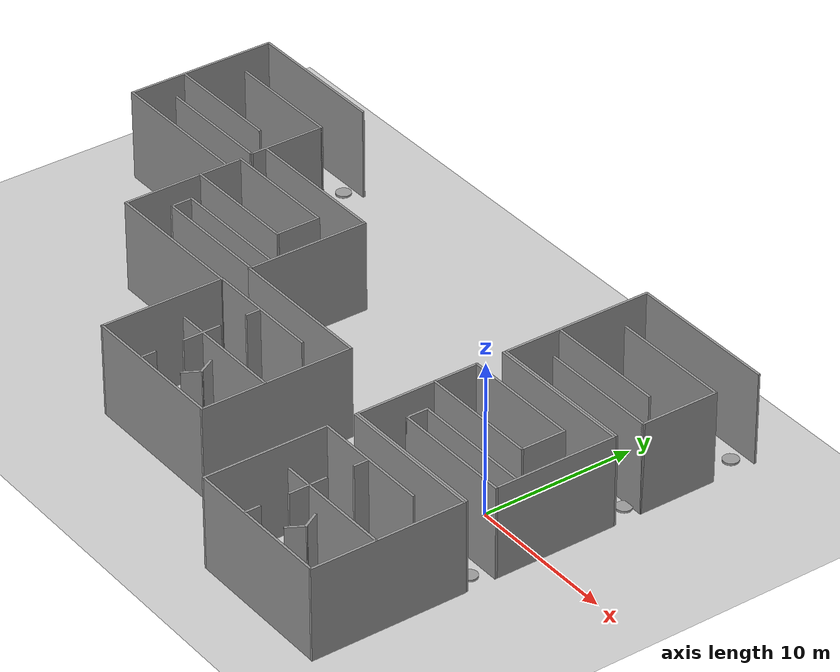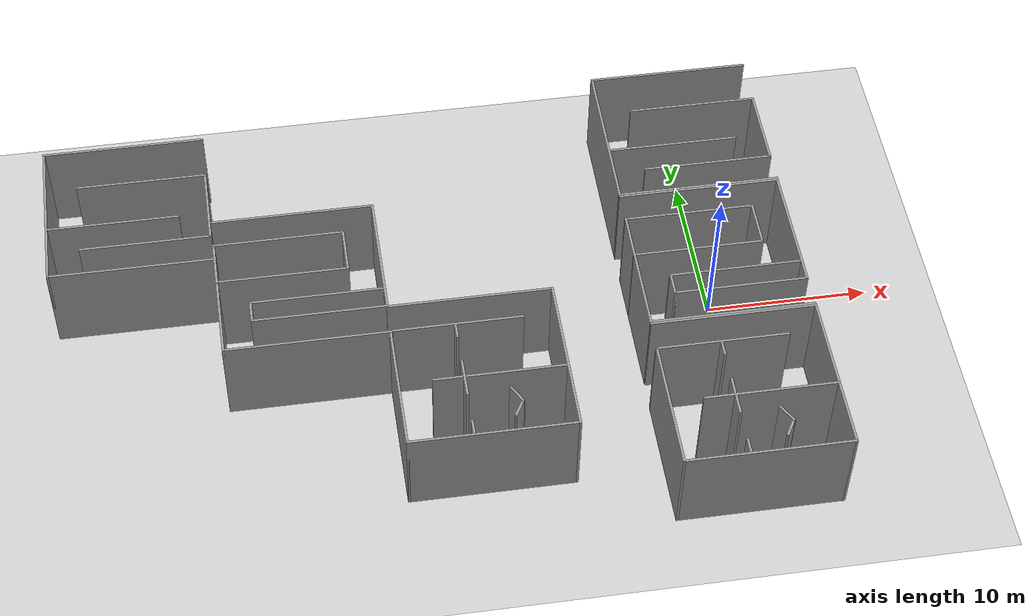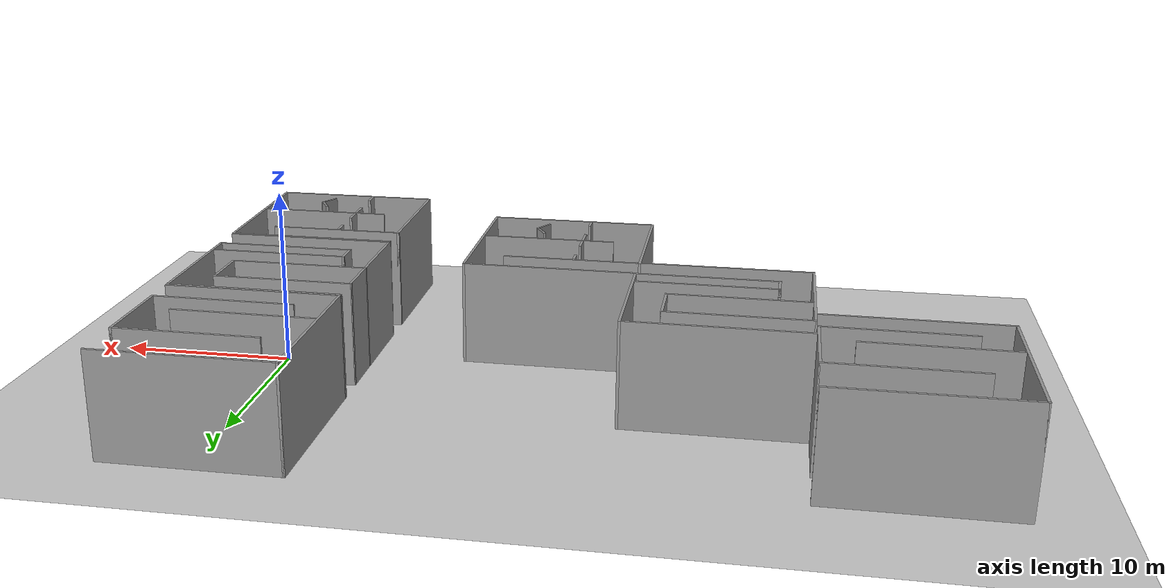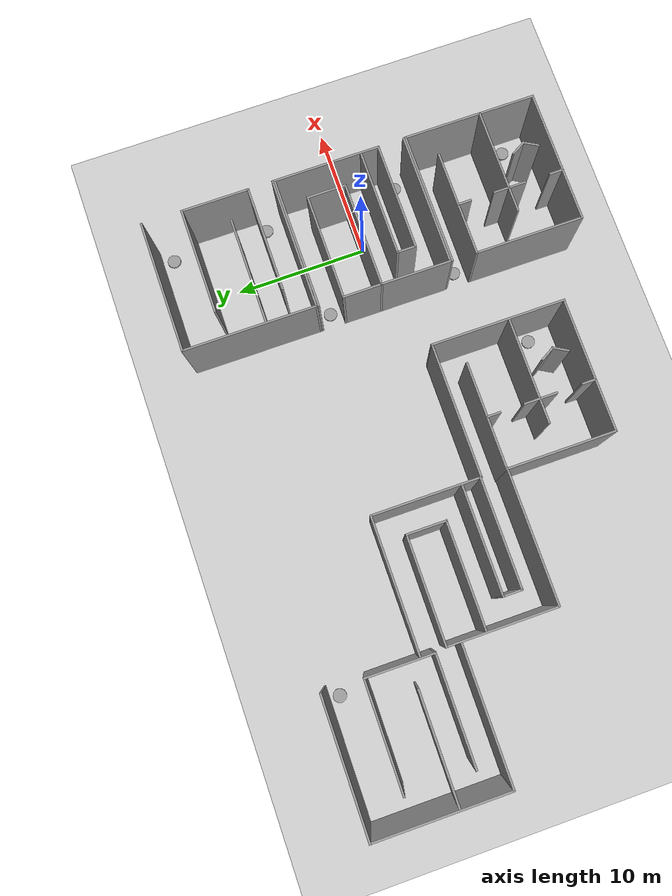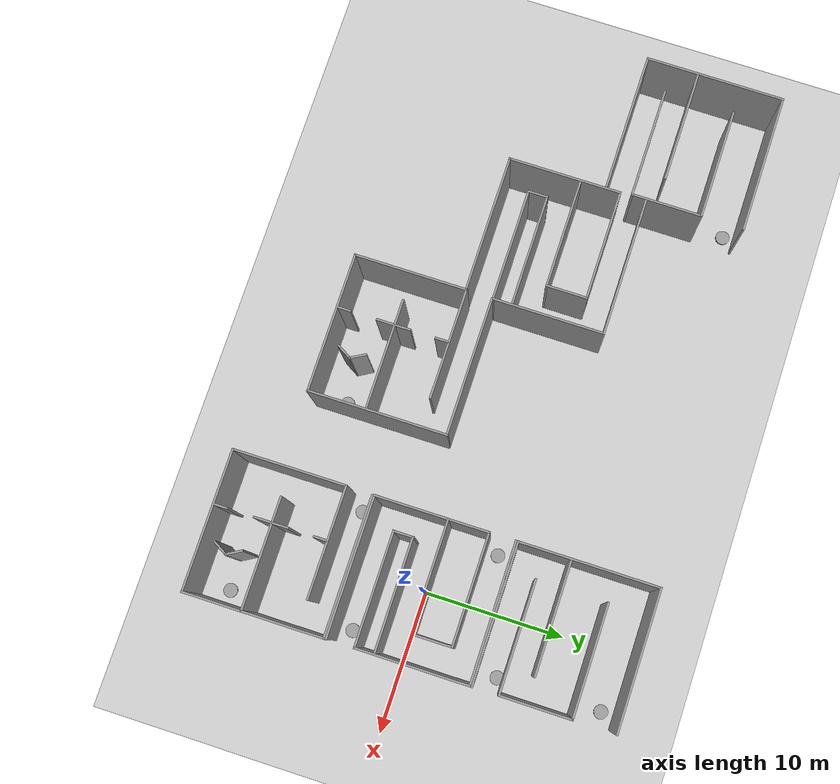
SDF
<sdf version="1.6">
 <world name="default">
  <light name="sun" type="directional">
   <pose>0 0 10 0 -0 0</pose>
   <diffuse>0.8 0.8 0.8 1</diffuse>
   <specular>0.2 0.2 0.2 1</specular>
   <attenuation>
    <range>1000</range>
    <constant>0.9</constant>
    <linear>0.01</linear>
    <quadratic>0.001</quadratic>
   </attenuation>
   <direction>-0.5 0.1 -0.9</direction>
  </light>
  <model name="ground_plane">
   <static>1</static>
   <link name="link">
    <collision name="collision">
     <geometry><plane><normal>0 0 1</normal><size>100 100</size></plane></geometry>
     <surface>
      <contact><collide_bitmask>65535</collide_bitmask></contact>
      <friction><ode><mu>100</mu><mu2>50</mu2></ode></friction>
     </surface>
    </collision>
    <visual name="visual">
     <cast_shadows>0</cast_shadows>
     <geometry><plane><normal>0 0 1</normal><size>100 100</size></plane></geometry>
     <material>
      <script><uri>file://media/materials/scripts/gazebo.material</uri><name>Gazebo/Grey</name></script>
     </material>
    </visual>
   </link>
  </model>
  <gravity>0 0 -9.8</gravity>
  <magnetic_field>6e-06 2.3e-05 -4.2e-05</magnetic_field>
  <atmosphere type="adiabatic"/>
  <physics name="default_physics" default="0" type="ode">
   <max_step_size>0.001</max_step_size>
   <real_time_factor>1</real_time_factor>
   <real_time_update_rate>1000</real_time_update_rate>
  </physics>
  <scene><ambient>0.4 0.4 0.4 1</ambient><background>0.7 0.7 0.7 1</background><shadows>1</shadows></scene>
  <spherical_coordinates>
   <surface_model>EARTH_WGS84</surface_model>
   <latitude_deg>0</latitude_deg>
   <longitude_deg>0</longitude_deg>
   <elevation>0</elevation>
   <heading_deg>0</heading_deg>
  </spherical_coordinates>
  <model name="floor_00">
   <pose>0 10 0 0 -0 3.14</pose>
   <link name="Wall_68">
    <collision name="Wall_68_Collision">
     <geometry><box><size>10 0.15 6</size></box></geometry>
     <pose>0 0 3 0 -0 0</pose>
    </collision>
    <visual name="Wall_68_Visual">
     <pose>0 0 3 0 -0 0</pose>
     <geometry><box><size>10 0.15 6</size></box></geometry>
     <material>
      <script><uri>file://media/materials/scripts/gazebo.material</uri><name>Gazebo/Grey</name></script>
      <ambient>1 1 1 1</ambient>
     </material>
     <meta><layer>0</layer></meta>
    </visual>
    <pose>0 -4.925 0 0 -0 0</pose>
   </link>
   <link name="Wall_69">
    <collision name="Wall_69_Collision">
     <geometry><box><size>10 0.15 6</size></box></geometry>
     <pose>0 0 3 0 -0 0</pose>
    </collision>
    <visual name="Wall_69_Visual">
     <pose>0 0 3 0 -0 0</pose>
     <geometry><box><size>10 0.15 6</size></box></geometry>
     <material>
      <script><uri>file://media/materials/scripts/gazebo.material</uri><name>Gazebo/Grey</name></script>
      <ambient>1 1 1 1</ambient>
     </material>
     <meta><layer>0</layer></meta>
    </visual>
    <pose>4.925 0 0 0 -0 1.5708</pose>
   </link>
   <link name="Wall_72">
    <collision name="Wall_72_Collision">
     <geometry><box><size>10 0.15 6</size></box></geometry>
     <pose>0 0 3 0 -0 0</pose>
    </collision>
    <visual name="Wall_72_Visual">
     <pose>0 0 3 0 -0 0</pose>
     <geometry><box><size>10 0.15 6</size></box></geometry>
     <material>
      <script><uri>file://media/materials/scripts/gazebo.material</uri><name>Gazebo/Grey</name></script>
      <ambient>1 1 1 1</ambient>
     </material>
     <meta><layer>0</layer></meta>
    </visual>
    <pose>0 4.925 0 0 -0 0</pose>
   </link>
   <link name="Wall_75">
    <collision name="Wall_75_Collision">
     <geometry><box><size>8 0.15 6</size></box></geometry>
     <pose>0 0 3 0 -0 0</pose>
    </collision>
    <visual name="Wall_75_Visual">
     <pose>0 0 3 0 -0 0</pose>
     <geometry><box><size>8 0.15 6</size></box></geometry>
     <material>
      <script><uri>file://media/materials/scripts/gazebo.material</uri><name>Gazebo/Grey</name></script>
      <ambient>1 1 1 1</ambient>
     </material>
     <meta><layer>0</layer></meta>
    </visual>
    <pose>-1 3.075 0 0 -0 0</pose>
   </link>
   <link name="Wall_79">
    <collision name="Wall_79_Collision">
     <geometry><box><size>8 0.15 6</size></box></geometry>
     <pose>0 0 3 0 -0 0</pose>
    </collision>
    <visual name="Wall_79_Visual">
     <pose>0 0 3 0 -0 0</pose>
     <geometry><box><size>8 0.15 6</size></box></geometry>
     <material>
      <script><uri>file://media/materials/scripts/gazebo.material</uri><name>Gazebo/Grey</name></script>
      <ambient>1 1 1 1</ambient>
     </material>
     <meta><layer>0</layer></meta>
    </visual>
    <pose>0.85 1.225 0 0 -0 0</pose>
   </link>
   <link name="Wall_82">
    <collision name="Wall_82_Collision">
     <geometry><box><size>8 0.15 6</size></box></geometry>
     <pose>0 0 3 0 -0 0</pose>
    </collision>
    <visual name="Wall_82_Visual">
     <pose>0 0 3 0 -0 0</pose>
     <geometry><box><size>8 0.15 6</size></box></geometry>
     <material>
      <script><uri>file://media/materials/scripts/gazebo.material</uri><name>Gazebo/Grey</name></script>
      <ambient>1 1 1 1</ambient>
     </material>
     <meta><layer>0</layer></meta>
    </visual>
    <pose>-1 -1.914 0 0 -0 0</pose>
   </link>
   <link name="Wall_84">
    <collision name="Wall_84_Collision">
     <geometry><box><size>5.139 0.15 6</size></box></geometry>
     <pose>0 0 3 0 -0 0</pose>
    </collision>
    <visual name="Wall_84_Visual">
     <pose>0 0 3 0 -0 0</pose>
     <geometry><box><size>5.139 0.15 6</size></box></geometry>
     <material>
      <script><uri>file://media/materials/scripts/gazebo.material</uri><name>Gazebo/Grey</name></script>
      <ambient>1 1 1 1</ambient>
     </material>
     <meta><layer>0</layer></meta>
    </visual>
    <pose>-4.925 0.5805 0 0 0 -1.5708</pose>
   </link>
   <static>1</static>
  </model>
  <model name="floor01">
   <link name="Wall_119">
    <collision name="Wall_119_Collision">
     <geometry><box><size>10 0.15 6</size></box></geometry>
     <pose>0 0 3 0 -0 0</pose>
    </collision>
    <visual name="Wall_119_Visual">
     <pose>0 0 3 0 -0 0</pose>
     <geometry><box><size>10 0.15 6</size></box></geometry>
     <material>
      <script><uri>file://media/materials/scripts/gazebo.material</uri><name>Gazebo/Grey</name></script>
      <ambient>1 1 1 1</ambient>
     </material>
     <meta><layer>0</layer></meta>
    </visual>
    <pose>0 -4.925 0 0 -0 0</pose>
   </link>
   <link name="Wall_121">
    <collision name="Wall_121_Collision">
     <geometry><box><size>10 0.15 6</size></box></geometry>
     <pose>0 0 3 0 -0 0</pose>
    </collision>
    <visual name="Wall_121_Visual">
     <pose>0 0 3 0 -0 0</pose>
     <geometry><box><size>10 0.15 6</size></box></geometry>
     <material>
      <script><uri>file://media/materials/scripts/gazebo.material</uri><name>Gazebo/Grey</name></script>
      <ambient>1 1 1 1</ambient>
     </material>
     <meta><layer>0</layer></meta>
    </visual>
    <pose>0 4.925 0 0 -0 3.14159</pose>
   </link>
   <link name="Wall_124">
    <collision name="Wall_124_Collision">
     <geometry><box><size>8 0.15 6</size></box></geometry>
     <pose>0 0 3 0 -0 0</pose>
    </collision>
    <visual name="Wall_124_Visual">
     <pose>0 0 3 0 -0 0</pose>
     <geometry><box><size>8 0.15 6</size></box></geometry>
     <material>
      <script><uri>file://media/materials/scripts/gazebo.material</uri><name>Gazebo/Grey</name></script>
      <ambient>1 1 1 1</ambient>
     </material>
     <meta><layer>0</layer></meta>
    </visual>
    <pose>-1 3.075 0 0 -0 0</pose>
   </link>
   <link name="Wall_125">
    <collision name="Wall_125_Collision">
     <geometry><box><size>3 0.15 6</size></box></geometry>
     <pose>0 0 3 0 -0 0</pose>
    </collision>
    <visual name="Wall_125_Visual">
     <pose>0 0 3 0 -0 0</pose>
     <geometry><box><size>3 0.15 6</size></box></geometry>
     <material>
      <script><uri>file://media/materials/scripts/gazebo.material</uri><name>Gazebo/Grey</name></script>
      <ambient>1 1 1 1</ambient>
     </material>
     <meta><layer>0</layer></meta>
    </visual>
    <pose>2.925 1.65 0 0 0 -1.5708</pose>
   </link>
   <link name="Wall_126">
    <collision name="Wall_126_Collision">
     <geometry><box><size>8 0.15 6</size></box></geometry>
     <pose>0 0 3 0 -0 0</pose>
    </collision>
    <visual name="Wall_126_Visual">
     <pose>0 0 3 0 -0 0</pose>
     <geometry><box><size>8 0.15 6</size></box></geometry>
     <material>
      <script><uri>file://media/materials/scripts/gazebo.material</uri><name>Gazebo/Grey</name></script>
      <ambient>1 1 1 1</ambient>
     </material>
     <meta><layer>0</layer></meta>
    </visual>
    <pose>-1 0.225 0 0 -0 3.14159</pose>
   </link>
   <link name="Wall_129">
    <collision name="Wall_129_Collision">
     <geometry><box><size>8 0.15 6</size></box></geometry>
     <pose>0 0 3 0 -0 0</pose>
    </collision>
    <visual name="Wall_129_Visual">
     <pose>0 0 3 0 -0 0</pose>
     <geometry><box><size>8 0.15 6</size></box></geometry>
     <material>
      <script><uri>file://media/materials/scripts/gazebo.material</uri><name>Gazebo/Grey</name></script>
      <ambient>1 1 1 1</ambient>
     </material>
     <meta><layer>0</layer></meta>
    </visual>
    <pose>0.85 -1.625 0 0 -0 0</pose>
   </link>
   <link name="Wall_132">
    <collision name="Wall_132_Collision">
     <geometry><box><size>1.5 0.15 6</size></box></geometry>
     <pose>0 0 3 0 -0 0</pose>
    </collision>
    <visual name="Wall_132_Visual">
     <pose>0 0 3 0 -0 0</pose>
     <geometry><box><size>1.5 0.15 6</size></box></geometry>
     <material>
      <script><uri>file://media/materials/scripts/gazebo.material</uri><name>Gazebo/Grey</name></script>
      <ambient>1 1 1 1</ambient>
     </material>
     <meta><layer>0</layer></meta>
    </visual>
    <pose>-3.075 -2.3 0 0 0 -1.5708</pose>
   </link>
   <link name="Wall_133">
    <collision name="Wall_133_Collision">
     <geometry><box><size>8.15 0.15 6</size></box></geometry>
     <pose>0 0 3 0 -0 0</pose>
    </collision>
    <visual name="Wall_133_Visual">
     <pose>0 0 3 0 -0 0</pose>
     <geometry><box><size>8.15 0.15 6</size></box></geometry>
     <material>
      <script><uri>file://media/materials/scripts/gazebo.material</uri><name>Gazebo/Grey</name></script>
      <ambient>1 1 1 1</ambient>
     </material>
     <meta><layer>0</layer></meta>
    </visual>
    <pose>0.925 -2.975 0 0 -0 0</pose>
   </link>
   <link name="Wall_135">
    <collision name="Wall_135_Collision">
     <geometry><box><size>8 0.15 6</size></box></geometry>
     <pose>0 0 3 0 -0 0</pose>
    </collision>
    <visual name="Wall_135_Visual">
     <pose>0 0 3 0 -0 0</pose>
     <geometry><box><size>8 0.15 6</size></box></geometry>
     <material>
      <script><uri>file://media/materials/scripts/gazebo.material</uri><name>Gazebo/Grey</name></script>
      <ambient>1 1 1 1</ambient>
     </material>
     <meta><layer>0</layer></meta>
    </visual>
    <pose>4.925 1 0 0 0 -1.5708</pose>
   </link>
   <link name="Wall_138">
    <collision name="Wall_138_Collision">
     <geometry><box><size>8.15 0.15 6</size></box></geometry>
     <pose>0 0 3 0 -0 0</pose>
    </collision>
    <visual name="Wall_138_Visual">
     <pose>0 0 3 0 -0 0</pose>
     <geometry><box><size>8.15 0.15 6</size></box></geometry>
     <material>
      <script><uri>file://media/materials/scripts/gazebo.material</uri><name>Gazebo/Grey</name></script>
      <ambient>1 1 1 1</ambient>
     </material>
     <meta><layer>0</layer></meta>
    </visual>
    <pose>-4.925 -0.924999 0 0 0 -1.5708</pose>
   </link>
   <static>1</static>
  </model>
  <model name="floor02">
   <pose>0 -10 0 0 -0 0</pose>
   <link name="Wall_141">
    <collision name="Wall_141_Collision">
     <geometry><box><size>10 0.15 6</size></box></geometry>
     <pose>0 0 3 0 -0 0</pose>
    </collision>
    <visual name="Wall_141_Visual">
     <pose>0 0 3 0 -0 0</pose>
     <geometry><box><size>10 0.15 6</size></box></geometry>
     <material>
      <script><uri>file://media/materials/scripts/gazebo.material</uri><name>Gazebo/Grey</name></script>
      <ambient>1 1 1 1</ambient>
     </material>
     <meta><layer>0</layer></meta>
    </visual>
    <pose>-0.0295 -4.915 0 0 -0 0</pose>
   </link>
   <link name="Wall_143">
    <collision name="Wall_143_Collision">
     <geometry><box><size>10 0.15 6</size></box></geometry>
     <pose>0 0 3 0 -0 0</pose>
    </collision>
    <visual name="Wall_143_Visual">
     <pose>0 0 3 0 -0 0</pose>
     <geometry><box><size>10 0.15 6</size></box></geometry>
     <material>
      <script><uri>file://media/materials/scripts/gazebo.material</uri><name>Gazebo/Grey</name></script>
      <ambient>1 1 1 1</ambient>
     </material>
     <meta><layer>0</layer></meta>
    </visual>
    <pose>0.0295 4.925 0 0 -0 3.14159</pose>
   </link>
   <link name="Wall_147">
    <collision name="Wall_147_Collision">
     <geometry><box><size>8 0.15 6</size></box></geometry>
     <pose>0 0 3 0 -0 0</pose>
    </collision>
    <visual name="Wall_147_Visual">
     <pose>0 0 3 0 -0 0</pose>
     <geometry><box><size>8 0.15 6</size></box></geometry>
     <material>
      <script><uri>file://media/materials/scripts/gazebo.material</uri><name>Gazebo/Grey</name></script>
      <ambient>1 1 1 1</ambient>
     </material>
     <meta><layer>0</layer></meta>
    </visual>
    <pose>-1.0295 3.085 0 0 -0 0</pose>
   </link>
   <link name="Wall_149">
    <collision name="Wall_149_Collision">
     <geometry><box><size>1 0.15 6</size></box></geometry>
     <pose>0 0 3 0 -0 0</pose>
    </collision>
    <visual name="Wall_149_Visual">
     <pose>0 0 3 0 -0 0</pose>
     <geometry><box><size>1 0.15 6</size></box></geometry>
     <material>
      <script><uri>file://media/materials/scripts/gazebo.material</uri><name>Gazebo/Grey</name></script>
      <ambient>1 1 1 1</ambient>
     </material>
     <meta><layer>0</layer></meta>
    </visual>
    <pose>-1.1165 2.581 0 0 0 -1.5708</pose>
   </link>
   <link name="Wall_151">
    <collision name="Wall_151_Collision">
     <geometry><box><size>2.5 0.15 6</size></box></geometry>
     <pose>0 0 3 0 -0 0</pose>
    </collision>
    <visual name="Wall_151_Visual">
     <pose>0 0 3 0 -0 0</pose>
     <geometry><box><size>2.5 0.15 6</size></box></geometry>
     <material>
      <script><uri>file://media/materials/scripts/gazebo.material</uri><name>Gazebo/Grey</name></script>
      <ambient>1 1 1 1</ambient>
     </material>
     <meta><layer>0</layer></meta>
    </visual>
    <pose>-1.1165 -0.869001 0 0 0 -1.5708</pose>
   </link>
   <link name="Wall_153">
    <collision name="Wall_153_Collision">
     <geometry><box><size>1 0.15 6</size></box></geometry>
     <pose>0 0 3 0 -0 0</pose>
    </collision>
    <visual name="Wall_153_Visual">
     <pose>0 0 3 0 -0 0</pose>
     <geometry><box><size>1 0.15 6</size></box></geometry>
     <material>
      <script><uri>file://media/materials/scripts/gazebo.material</uri><name>Gazebo/Grey</name></script>
      <ambient>1 1 1 1</ambient>
     </material>
     <meta><layer>0</layer></meta>
    </visual>
    <pose>-1.1165 -4.409 0 0 0 -1.5708</pose>
   </link>
   <link name="Wall_156">
    <collision name="Wall_156_Collision">
     <geometry><box><size>8 0.15 6</size></box></geometry>
     <pose>0 0 3 0 -0 0</pose>
    </collision>
    <visual name="Wall_156_Visual">
     <pose>0 0 3 0 -0 0</pose>
     <geometry><box><size>8 0.15 6</size></box></geometry>
     <material>
      <script><uri>file://media/materials/scripts/gazebo.material</uri><name>Gazebo/Grey</name></script>
      <ambient>1 1 1 1</ambient>
     </material>
     <meta><layer>0</layer></meta>
    </visual>
    <pose>1.0085 -0.794001 0 0 -0 3.14159</pose>
   </link>
   <link name="Wall_161">
    <collision name="Wall_161_Collision">
     <geometry><box><size>10 0.15 6</size></box></geometry>
     <pose>0 0 3 0 -0 0</pose>
    </collision>
    <visual name="Wall_161_Visual">
     <pose>0 0 3 0 -0 0</pose>
     <geometry><box><size>10 0.15 6</size></box></geometry>
     <material>
      <script><uri>file://media/materials/scripts/gazebo.material</uri><name>Gazebo/Grey</name></script>
      <ambient>1 1 1 1</ambient>
     </material>
     <meta><layer>0</layer></meta>
    </visual>
    <pose>4.9545 0 0 0 0 -1.5708</pose>
   </link>
   <link name="Wall_165">
    <collision name="Wall_165_Collision">
     <geometry><box><size>8.15 0.15 6</size></box></geometry>
     <pose>0 0 3 0 -0 0</pose>
    </collision>
    <visual name="Wall_165_Visual">
     <pose>0 0 3 0 -0 0</pose>
     <geometry><box><size>8.15 0.15 6</size></box></geometry>
     <material>
      <script><uri>file://media/materials/scripts/gazebo.material</uri><name>Gazebo/Grey</name></script>
      <ambient>1 1 1 1</ambient>
     </material>
     <meta><layer>0</layer></meta>
    </visual>
    <pose>-4.9545 -0.915001 0 0 0 -1.5708</pose>
   </link>
   <static>1</static>
  </model>
  <model name="unit_cylinder">
   <pose>4 14 0.070573 4e-06 4e-06 0.000134</pose>
   <link name="link">
    <inertial>
     <mass>1</mass>
     <inertia><ixx>0.145833</ixx><ixy>0</ixy><ixz>0</ixz><iyy>0.145833</iyy><iyz>0</iyz><izz>0.125</izz></inertia>
    </inertial>
    <collision name="collision">
     <geometry><cylinder><radius>0.5</radius><length>0.141156</length></cylinder></geometry>
    </collision>
    <visual name="visual">
     <geometry><cylinder><radius>0.5</radius><length>0.141156</length></cylinder></geometry>
     <material>
      <script><name>Gazebo/Grey</name><uri>file://media/materials/scripts/gazebo.material</uri></script>
     </material>
    </visual>
   </link>
  </model>
  <model name="unit_cylinder_clone">
   <pose>4 6.5 0.070572 -2e-06 -3e-06 -0.11298</pose>
   <link name="link">
    <inertial>
     <mass>1</mass>
     <inertia><ixx>0.145833</ixx><ixy>0</ixy><ixz>0</ixz><iyy>0.145833</iyy><iyz>0</iyz><izz>0.125</izz></inertia>
    </inertial>
    <collision name="collision">
     <geometry><cylinder><radius>0.5</radius><length>0.141156</length></cylinder></geometry>
    </collision>
    <visual name="visual">
     <geometry><cylinder><radius>0.5</radius><length>0.141156</length></cylinder></geometry>
     <material>
      <script><name>Gazebo/Grey</name><uri>file://media/materials/scripts/gazebo.material</uri></script>
     </material>
    </visual>
   </link>
  </model>
  <model name="unit_cylinder_clone_0">
   <pose>-4 4 0.070573 -4e-06 -4e-06 -0</pose>
   <link name="link">
    <inertial>
     <mass>1</mass>
     <inertia><ixx>0.145833</ixx><ixy>0</ixy><ixz>0</ixz><iyy>0.145833</iyy><iyz>0</iyz><izz>0.125</izz></inertia>
    </inertial>
    <collision name="collision">
     <geometry><cylinder><radius>0.5</radius><length>0.141156</length></cylinder></geometry>
    </collision>
    <visual name="visual">
     <geometry><cylinder><radius>0.5</radius><length>0.141156</length></cylinder></geometry>
     <material>
      <script><name>Gazebo/Grey</name><uri>file://media/materials/scripts/gazebo.material</uri></script>
     </material>
    </visual>
   </link>
  </model>
  <model name="unit_cylinder_clone_1">
   <pose>4 -4 0.070573 -4e-06 -4e-06 -0</pose>
   <link name="link">
    <inertial>
     <mass>1</mass>
     <inertia><ixx>0.145833</ixx><ixy>0</ixy><ixz>0</ixz><iyy>0.145833</iyy><iyz>0</iyz><izz>0.125</izz></inertia>
    </inertial>
    <collision name="collision">
     <geometry><cylinder><radius>0.5</radius><length>0.141156</length></cylinder></geometry>
    </collision>
    <visual name="visual">
     <geometry><cylinder><radius>0.5</radius><length>0.141156</length></cylinder></geometry>
     <material>
      <script><name>Gazebo/Grey</name><uri>file://media/materials/scripts/gazebo.material</uri></script>
     </material>
    </visual>
   </link>
  </model>
  <model name="unit_cylinder_clone_2">
   <pose>-4 -6 0.070573 -4e-06 -4e-06 -0</pose>
   <link name="link">
    <inertial>
     <mass>1</mass>
     <inertia><ixx>0.145833</ixx><ixy>0</ixy><ixz>0</ixz><iyy>0.145833</iyy><iyz>0</iyz><izz>0.125</izz></inertia>
    </inertial>
    <collision name="collision">
     <geometry><cylinder><radius>0.5</radius><length>0.141156</length></cylinder></geometry>
    </collision>
    <visual name="visual">
     <geometry><cylinder><radius>0.5</radius><length>0.141156</length></cylinder></geometry>
     <material>
      <script><name>Gazebo/Grey</name><uri>file://media/materials/scripts/gazebo.material</uri></script>
     </material>
    </visual>
   </link>
  </model>
  <model name="unit_cylinder_clone_3">
   <pose>4 -13 0.070573 -4e-06 -4e-06 -0</pose>
   <link name="link">
    <inertial>
     <mass>1</mass>
     <inertia><ixx>0.145833</ixx><ixy>0</ixy><ixz>0</ixz><iyy>0.145833</iyy><iyz>0</iyz><izz>0.125</izz></inertia>
    </inertial>
    <collision name="collision">
     <geometry><cylinder><radius>0.5</radius><length>0.141156</length></cylinder></geometry>
    </collision>
    <visual name="visual">
     <geometry><cylinder><radius>0.5</radius><length>0.141156</length></cylinder></geometry>
     <material>
      <script><name>Gazebo/Grey</name><uri>file://media/materials/scripts/gazebo.material</uri></script>
     </material>
    </visual>
   </link>
  </model>
  <model name="floor01_clone">
   <pose>-25.0322 1.41171 0 0 -0 0</pose>
   <link name="Wall_119">
    <collision name="Wall_119_Collision">
     <geometry><box><size>10 0.15 6</size></box></geometry>
     <pose>0 0 3 0 -0 0</pose>
    </collision>
    <visual name="Wall_119_Visual">
     <pose>0 0 3 0 -0 0</pose>
     <geometry><box><size>10 0.15 6</size></box></geometry>
     <material>
      <script><uri>file://media/materials/scripts/gazebo.material</uri><name>Gazebo/Grey</name></script>
      <ambient>1 1 1 1</ambient>
     </material>
     <meta><layer>0</layer></meta>
    </visual>
    <pose>0 -4.925 0 0 -0 0</pose>
   </link>
   <link name="Wall_121">
    <collision name="Wall_121_Collision">
     <geometry><box><size>10 0.15 6</size></box></geometry>
     <pose>0 0 3 0 -0 0</pose>
    </collision>
    <visual name="Wall_121_Visual">
     <pose>0 0 3 0 -0 0</pose>
     <geometry><box><size>10 0.15 6</size></box></geometry>
     <material>
      <script><uri>file://media/materials/scripts/gazebo.material</uri><name>Gazebo/Grey</name></script>
      <ambient>1 1 1 1</ambient>
     </material>
     <meta><layer>0</layer></meta>
    </visual>
    <pose>0 4.925 0 0 -0 3.14159</pose>
   </link>
   <link name="Wall_124">
    <collision name="Wall_124_Collision">
     <geometry><box><size>8 0.15 6</size></box></geometry>
     <pose>0 0 3 0 -0 0</pose>
    </collision>
    <visual name="Wall_124_Visual">
     <pose>0 0 3 0 -0 0</pose>
     <geometry><box><size>8 0.15 6</size></box></geometry>
     <material>
      <script><uri>file://media/materials/scripts/gazebo.material</uri><name>Gazebo/Grey</name></script>
      <ambient>1 1 1 1</ambient>
     </material>
     <meta><layer>0</layer></meta>
    </visual>
    <pose>-1 3.075 0 0 -0 0</pose>
   </link>
   <link name="Wall_125">
    <collision name="Wall_125_Collision">
     <geometry><box><size>3 0.15 6</size></box></geometry>
     <pose>0 0 3 0 -0 0</pose>
    </collision>
    <visual name="Wall_125_Visual">
     <pose>0 0 3 0 -0 0</pose>
     <geometry><box><size>3 0.15 6</size></box></geometry>
     <material>
      <script><uri>file://media/materials/scripts/gazebo.material</uri><name>Gazebo/Grey</name></script>
      <ambient>1 1 1 1</ambient>
     </material>
     <meta><layer>0</layer></meta>
    </visual>
    <pose>2.925 1.65 0 0 0 -1.5708</pose>
   </link>
   <link name="Wall_126">
    <collision name="Wall_126_Collision">
     <geometry><box><size>8 0.15 6</size></box></geometry>
     <pose>0 0 3 0 -0 0</pose>
    </collision>
    <visual name="Wall_126_Visual">
     <pose>0 0 3 0 -0 0</pose>
     <geometry><box><size>8 0.15 6</size></box></geometry>
     <material>
      <script><uri>file://media/materials/scripts/gazebo.material</uri><name>Gazebo/Grey</name></script>
      <ambient>1 1 1 1</ambient>
     </material>
     <meta><layer>0</layer></meta>
    </visual>
    <pose>-1 0.225 0 0 -0 3.14159</pose>
   </link>
   <link name="Wall_129">
    <collision name="Wall_129_Collision">
     <geometry><box><size>8 0.15 6</size></box></geometry>
     <pose>0 0 3 0 -0 0</pose>
    </collision>
    <visual name="Wall_129_Visual">
     <pose>0 0 3 0 -0 0</pose>
     <geometry><box><size>8 0.15 6</size></box></geometry>
     <material>
      <script><uri>file://media/materials/scripts/gazebo.material</uri><name>Gazebo/Grey</name></script>
      <ambient>1 1 1 1</ambient>
     </material>
     <meta><layer>0</layer></meta>
    </visual>
    <pose>0.85 -1.625 0 0 -0 0</pose>
   </link>
   <link name="Wall_132">
    <collision name="Wall_132_Collision">
     <geometry><box><size>1.5 0.15 6</size></box></geometry>
     <pose>0 0 3 0 -0 0</pose>
    </collision>
    <visual name="Wall_132_Visual">
     <pose>0 0 3 0 -0 0</pose>
     <geometry><box><size>1.5 0.15 6</size></box></geometry>
     <material>
      <script><uri>file://media/materials/scripts/gazebo.material</uri><name>Gazebo/Grey</name></script>
      <ambient>1 1 1 1</ambient>
     </material>
     <meta><layer>0</layer></meta>
    </visual>
    <pose>-3.075 -2.3 0 0 0 -1.5708</pose>
   </link>
   <link name="Wall_133">
    <collision name="Wall_133_Collision">
     <geometry><box><size>8.15 0.15 6</size></box></geometry>
     <pose>0 0 3 0 -0 0</pose>
    </collision>
    <visual name="Wall_133_Visual">
     <pose>0 0 3 0 -0 0</pose>
     <geometry><box><size>8.15 0.15 6</size></box></geometry>
     <material>
      <script><uri>file://media/materials/scripts/gazebo.material</uri><name>Gazebo/Grey</name></script>
      <ambient>1 1 1 1</ambient>
     </material>
     <meta><layer>0</layer></meta>
    </visual>
    <pose>0.925 -2.975 0 0 -0 0</pose>
   </link>
   <link name="Wall_135">
    <collision name="Wall_135_Collision">
     <geometry><box><size>8 0.15 6</size></box></geometry>
     <pose>0 0 3 0 -0 0</pose>
    </collision>
    <visual name="Wall_135_Visual">
     <pose>0 0 3 0 -0 0</pose>
     <geometry><box><size>8 0.15 6</size></box></geometry>
     <material>
      <script><uri>file://media/materials/scripts/gazebo.material</uri><name>Gazebo/Grey</name></script>
      <ambient>1 1 1 1</ambient>
     </material>
     <meta><layer>0</layer></meta>
    </visual>
    <pose>4.925 1 0 0 0 -1.5708</pose>
   </link>
   <link name="Wall_138">
    <collision name="Wall_138_Collision">
     <geometry><box><size>8.15 0.15 6</size></box></geometry>
     <pose>0 0 3 0 -0 0</pose>
    </collision>
    <visual name="Wall_138_Visual">
     <pose>0 0 3 0 -0 0</pose>
     <geometry><box><size>8.15 0.15 6</size></box></geometry>
     <material>
      <script><uri>file://media/materials/scripts/gazebo.material</uri><name>Gazebo/Grey</name></script>
      <ambient>1 1 1 1</ambient>
     </material>
     <meta><layer>0</layer></meta>
    </visual>
    <pose>-4.925 -0.924999 0 0 0 -1.5708</pose>
   </link>
   <static>1</static>
  </model>
  <model name="floor02_clone">
   <pose>-15.201 -6.55443 0 0 -0 0</pose>
   <link name="Wall_141">
    <collision name="Wall_141_Collision">
     <geometry><box><size>10 0.15 6</size></box></geometry>
     <pose>0 0 3 0 -0 0</pose>
    </collision>
    <visual name="Wall_141_Visual">
     <pose>0 0 3 0 -0 0</pose>
     <geometry><box><size>10 0.15 6</size></box></geometry>
     <material>
      <script><uri>file://media/materials/scripts/gazebo.material</uri><name>Gazebo/Grey</name></script>
      <ambient>1 1 1 1</ambient>
     </material>
     <meta><layer>0</layer></meta>
    </visual>
    <pose>-0.0295 -4.915 0 0 -0 0</pose>
   </link>
   <link name="Wall_143">
    <collision name="Wall_143_Collision">
     <geometry><box><size>10 0.15 6</size></box></geometry>
     <pose>0 0 3 0 -0 0</pose>
    </collision>
    <visual name="Wall_143_Visual">
     <pose>0 0 3 0 -0 0</pose>
     <geometry><box><size>10 0.15 6</size></box></geometry>
     <material>
      <script><uri>file://media/materials/scripts/gazebo.material</uri><name>Gazebo/Grey</name></script>
      <ambient>1 1 1 1</ambient>
     </material>
     <meta><layer>0</layer></meta>
    </visual>
    <pose>0.0295 4.925 0 0 -0 3.14159</pose>
   </link>
   <link name="Wall_147">
    <collision name="Wall_147_Collision">
     <geometry><box><size>8 0.15 6</size></box></geometry>
     <pose>0 0 3 0 -0 0</pose>
    </collision>
    <visual name="Wall_147_Visual">
     <pose>0 0 3 0 -0 0</pose>
     <geometry><box><size>8 0.15 6</size></box></geometry>
     <material>
      <script><uri>file://media/materials/scripts/gazebo.material</uri><name>Gazebo/Grey</name></script>
      <ambient>1 1 1 1</ambient>
     </material>
     <meta><layer>0</layer></meta>
    </visual>
    <pose>-1.0295 3.085 0 0 -0 0</pose>
   </link>
   <link name="Wall_149">
    <collision name="Wall_149_Collision">
     <geometry><box><size>1 0.15 6</size></box></geometry>
     <pose>0 0 3 0 -0 0</pose>
    </collision>
    <visual name="Wall_149_Visual">
     <pose>0 0 3 0 -0 0</pose>
     <geometry><box><size>1 0.15 6</size></box></geometry>
     <material>
      <script><uri>file://media/materials/scripts/gazebo.material</uri><name>Gazebo/Grey</name></script>
      <ambient>1 1 1 1</ambient>
     </material>
     <meta><layer>0</layer></meta>
    </visual>
    <pose>-1.1165 2.581 0 0 0 -1.5708</pose>
   </link>
   <link name="Wall_151">
    <collision name="Wall_151_Collision">
     <geometry><box><size>2.5 0.15 6</size></box></geometry>
     <pose>0 0 3 0 -0 0</pose>
    </collision>
    <visual name="Wall_151_Visual">
     <pose>0 0 3 0 -0 0</pose>
     <geometry><box><size>2.5 0.15 6</size></box></geometry>
     <material>
      <script><uri>file://media/materials/scripts/gazebo.material</uri><name>Gazebo/Grey</name></script>
      <ambient>1 1 1 1</ambient>
     </material>
     <meta><layer>0</layer></meta>
    </visual>
    <pose>-1.1165 -0.869001 0 0 0 -1.5708</pose>
   </link>
   <link name="Wall_153">
    <collision name="Wall_153_Collision">
     <geometry><box><size>1 0.15 6</size></box></geometry>
     <pose>0 0 3 0 -0 0</pose>
    </collision>
    <visual name="Wall_153_Visual">
     <pose>0 0 3 0 -0 0</pose>
     <geometry><box><size>1 0.15 6</size></box></geometry>
     <material>
      <script><uri>file://media/materials/scripts/gazebo.material</uri><name>Gazebo/Grey</name></script>
      <ambient>1 1 1 1</ambient>
     </material>
     <meta><layer>0</layer></meta>
    </visual>
    <pose>-1.1165 -4.409 0 0 0 -1.5708</pose>
   </link>
   <link name="Wall_156">
    <collision name="Wall_156_Collision">
     <geometry><box><size>8 0.15 6</size></box></geometry>
     <pose>0 0 3 0 -0 0</pose>
    </collision>
    <visual name="Wall_156_Visual">
     <pose>0 0 3 0 -0 0</pose>
     <geometry><box><size>8 0.15 6</size></box></geometry>
     <material>
      <script><uri>file://media/materials/scripts/gazebo.material</uri><name>Gazebo/Grey</name></script>
      <ambient>1 1 1 1</ambient>
     </material>
     <meta><layer>0</layer></meta>
    </visual>
    <pose>1.0085 -0.794001 0 0 -0 3.14159</pose>
   </link>
   <link name="Wall_161">
    <collision name="Wall_161_Collision">
     <geometry><box><size>10 0.15 6</size></box></geometry>
     <pose>0 0 3 0 -0 0</pose>
    </collision>
    <visual name="Wall_161_Visual">
     <pose>0 0 3 0 -0 0</pose>
     <geometry><box><size>10 0.15 6</size></box></geometry>
     <material>
      <script><uri>file://media/materials/scripts/gazebo.material</uri><name>Gazebo/Grey</name></script>
      <ambient>1 1 1 1</ambient>
     </material>
     <meta><layer>0</layer></meta>
    </visual>
    <pose>4.9545 0 0 0 0 -1.5708</pose>
   </link>
   <link name="Wall_165">
    <collision name="Wall_165_Collision">
     <geometry><box><size>8.15 0.15 6</size></box></geometry>
     <pose>0 0 3 0 -0 0</pose>
    </collision>
    <visual name="Wall_165_Visual">
     <pose>0 0 3 0 -0 0</pose>
     <geometry><box><size>8.15 0.15 6</size></box></geometry>
     <material>
      <script><uri>file://media/materials/scripts/gazebo.material</uri><name>Gazebo/Grey</name></script>
      <ambient>1 1 1 1</ambient>
     </material>
     <meta><layer>0</layer></meta>
    </visual>
    <pose>-4.9545 -0.915001 0 0 0 -1.5708</pose>
   </link>
   <static>1</static>
  </model>
  <model name="unit_cylinder_clone_5">
   <pose>-11 -9.5 0.070572 8e-06 -8e-06 1e-06</pose>
   <link name="link">
    <inertial>
     <mass>1</mass>
     <inertia><ixx>0.145833</ixx><ixy>0</ixy><ixz>0</ixz><iyy>0.145833</iyy><iyz>0</iyz><izz>0.125</izz></inertia>
    </inertial>
    <collision name="collision">
     <geometry><cylinder><radius>0.5</radius><length>0.141156</length></cylinder></geometry>
    </collision>
    <visual name="visual">
     <geometry><cylinder><radius>0.5</radius><length>0.141156</length></cylinder></geometry>
     <material>
      <script><name>Gazebo/Grey</name><uri>file://media/materials/scripts/gazebo.material</uri></script>
     </material>
    </visual>
   </link>
  </model>
  <model name="floor_00_clone_0">
   <pose>-35.0056 8.38021 0 0 -0 3.14</pose>
   <link name="Wall_68">
    <collision name="Wall_68_Collision">
     <geometry><box><size>10 0.15 6</size></box></geometry>
     <pose>0 0 3 0 -0 0</pose>
    </collision>
    <visual name="Wall_68_Visual">
     <pose>0 0 3 0 -0 0</pose>
     <geometry><box><size>10 0.15 6</size></box></geometry>
     <material>
      <script><uri>file://media/materials/scripts/gazebo.material</uri><name>Gazebo/Grey</name></script>
      <ambient>1 1 1 1</ambient>
     </material>
     <meta><layer>0</layer></meta>
    </visual>
    <pose>0 -4.925 0 0 -0 0</pose>
   </link>
   <link name="Wall_69">
    <collision name="Wall_69_Collision">
     <geometry><box><size>10 0.15 6</size></box></geometry>
     <pose>0 0 3 0 -0 0</pose>
    </collision>
    <visual name="Wall_69_Visual">
     <pose>0 0 3 0 -0 0</pose>
     <geometry><box><size>10 0.15 6</size></box></geometry>
     <material>
      <script><uri>file://media/materials/scripts/gazebo.material</uri><name>Gazebo/Grey</name></script>
      <ambient>1 1 1 1</ambient>
     </material>
     <meta><layer>0</layer></meta>
    </visual>
    <pose>4.925 0 0 0 -0 1.5708</pose>
   </link>
   <link name="Wall_72">
    <collision name="Wall_72_Collision">
     <geometry><box><size>10 0.15 6</size></box></geometry>
     <pose>0 0 3 0 -0 0</pose>
    </collision>
    <visual name="Wall_72_Visual">
     <pose>0 0 3 0 -0 0</pose>
     <geometry><box><size>10 0.15 6</size></box></geometry>
     <material>
      <script><uri>file://media/materials/scripts/gazebo.material</uri><name>Gazebo/Grey</name></script>
      <ambient>1 1 1 1</ambient>
     </material>
     <meta><layer>0</layer></meta>
    </visual>
    <pose>0 4.925 0 0 -0 0</pose>
   </link>
   <link name="Wall_75">
    <collision name="Wall_75_Collision">
     <geometry><box><size>8 0.15 6</size></box></geometry>
     <pose>0 0 3 0 -0 0</pose>
    </collision>
    <visual name="Wall_75_Visual">
     <pose>0 0 3 0 -0 0</pose>
     <geometry><box><size>8 0.15 6</size></box></geometry>
     <material>
      <script><uri>file://media/materials/scripts/gazebo.material</uri><name>Gazebo/Grey</name></script>
      <ambient>1 1 1 1</ambient>
     </material>
     <meta><layer>0</layer></meta>
    </visual>
    <pose>-1 3.075 0 0 -0 0</pose>
   </link>
   <link name="Wall_79">
    <collision name="Wall_79_Collision">
     <geometry><box><size>8 0.15 6</size></box></geometry>
     <pose>0 0 3 0 -0 0</pose>
    </collision>
    <visual name="Wall_79_Visual">
     <pose>0 0 3 0 -0 0</pose>
     <geometry><box><size>8 0.15 6</size></box></geometry>
     <material>
      <script><uri>file://media/materials/scripts/gazebo.material</uri><name>Gazebo/Grey</name></script>
      <ambient>1 1 1 1</ambient>
     </material>
     <meta><layer>0</layer></meta>
    </visual>
    <pose>0.85 1.225 0 0 -0 0</pose>
   </link>
   <link name="Wall_82">
    <collision name="Wall_82_Collision">
     <geometry><box><size>8 0.15 6</size></box></geometry>
     <pose>0 0 3 0 -0 0</pose>
    </collision>
    <visual name="Wall_82_Visual">
     <pose>0 0 3 0 -0 0</pose>
     <geometry><box><size>8 0.15 6</size></box></geometry>
     <material>
      <script><uri>file://media/materials/scripts/gazebo.material</uri><name>Gazebo/Grey</name></script>
      <ambient>1 1 1 1</ambient>
     </material>
     <meta><layer>0</layer></meta>
    </visual>
    <pose>-1 -1.914 0 0 -0 0</pose>
   </link>
   <link name="Wall_84">
    <collision name="Wall_84_Collision">
     <geometry><box><size>5.139 0.15 6</size></box></geometry>
     <pose>0 0 3 0 -0 0</pose>
    </collision>
    <visual name="Wall_84_Visual">
     <pose>0 0 3 0 -0 0</pose>
     <geometry><box><size>5.139 0.15 6</size></box></geometry>
     <material>
      <script><uri>file://media/materials/scripts/gazebo.material</uri><name>Gazebo/Grey</name></script>
      <ambient>1 1 1 1</ambient>
     </material>
     <meta><layer>0</layer></meta>
    </visual>
    <pose>-4.925 0.5805 0 0 0 -1.5708</pose>
   </link>
   <static>1</static>
  </model>
  <model name="unit_cylinder_clone_4">
   <pose>-31 12.5 0.070573 -4e-06 -4e-06 0.000134</pose>
   <link name="link">
    <inertial>
     <mass>1</mass>
     <inertia><ixx>0.145833</ixx><ixy>0</ixy><ixz>0</ixz><iyy>0.145833</iyy><iyz>0</iyz><izz>0.125</izz></inertia>
    </inertial>
    <collision name="collision">
     <geometry><cylinder><radius>0.5</radius><length>0.141156</length></cylinder></geometry>
    </collision>
    <visual name="visual">
     <geometry><cylinder><radius>0.5</radius><length>0.141156</length></cylinder></geometry>
     <material>
      <script><name>Gazebo/Grey</name><uri>file://media/materials/scripts/gazebo.material</uri></script>
     </material>
    </visual>
   </link>
  </model>
  <model name="concave01">
   <pose>1.5 -13 0 0 -0 0</pose>
   <link name="Wall_0">
    <collision name="Wall_0_Collision">
     <geometry><box><size>1.25 0.15 6</size></box></geometry>
     <pose>0 0 3 0 -0 0</pose>
    </collision>
    <visual name="Wall_0_Visual">
     <pose>0 0 3 0 -0 0</pose>
     <geometry><box><size>1.25 0.15 6</size></box></geometry>
     <material>
      <script><uri>file://media/materials/scripts/gazebo.material</uri><name>Gazebo/Grey</name></script>
      <ambient>1 1 1 1</ambient>
     </material>
     <meta><layer>0</layer></meta>
    </visual>
    <pose>0 0.476386 0 0 0 -1.04737</pose>
   </link>
   <link name="Wall_1">
    <collision name="Wall_1_Collision">
     <geometry><box><size>1.25 0.15 6</size></box></geometry>
     <pose>0 0 3 0 -0 0</pose>
    </collision>
    <visual name="Wall_1_Visual">
     <pose>0 0 3 0 -0 0</pose>
     <geometry><box><size>1.25 0.15 6</size></box></geometry>
     <material>
      <script><uri>file://media/materials/scripts/gazebo.material</uri><name>Gazebo/Grey</name></script>
      <ambient>1 1 1 1</ambient>
     </material>
     <meta><layer>0</layer></meta>
    </visual>
    <pose>0 -0.476428 0 0 0 -2.0944</pose>
   </link>
   <static>1</static>
  </model>
  <model name="concave01_0">
   <pose>-13.5 -9.5 0 0 -0 0</pose>
   <link name="Wall_0">
    <collision name="Wall_0_Collision">
     <geometry><box><size>1.25 0.15 6</size></box></geometry>
     <pose>0 0 3 0 -0 0</pose>
    </collision>
    <visual name="Wall_0_Visual">
     <pose>0 0 3 0 -0 0</pose>
     <geometry><box><size>1.25 0.15 6</size></box></geometry>
     <material>
      <script><uri>file://media/materials/scripts/gazebo.material</uri><name>Gazebo/Grey</name></script>
      <ambient>1 1 1 1</ambient>
     </material>
     <meta><layer>0</layer></meta>
    </visual>
    <pose>0 0.476386 0 0 0 -1.04737</pose>
   </link>
   <link name="Wall_1">
    <collision name="Wall_1_Collision">
     <geometry><box><size>1.25 0.15 6</size></box></geometry>
     <pose>0 0 3 0 -0 0</pose>
    </collision>
    <visual name="Wall_1_Visual">
     <pose>0 0 3 0 -0 0</pose>
     <geometry><box><size>1.25 0.15 6</size></box></geometry>
     <material>
      <script><uri>file://media/materials/scripts/gazebo.material</uri><name>Gazebo/Grey</name></script>
      <ambient>1 1 1 1</ambient>
     </material>
     <meta><layer>0</layer></meta>
    </visual>
    <pose>0 -0.476428 0 0 0 -2.0944</pose>
   </link>
   <static>1</static>
  </model>
 </world>
</sdf>
